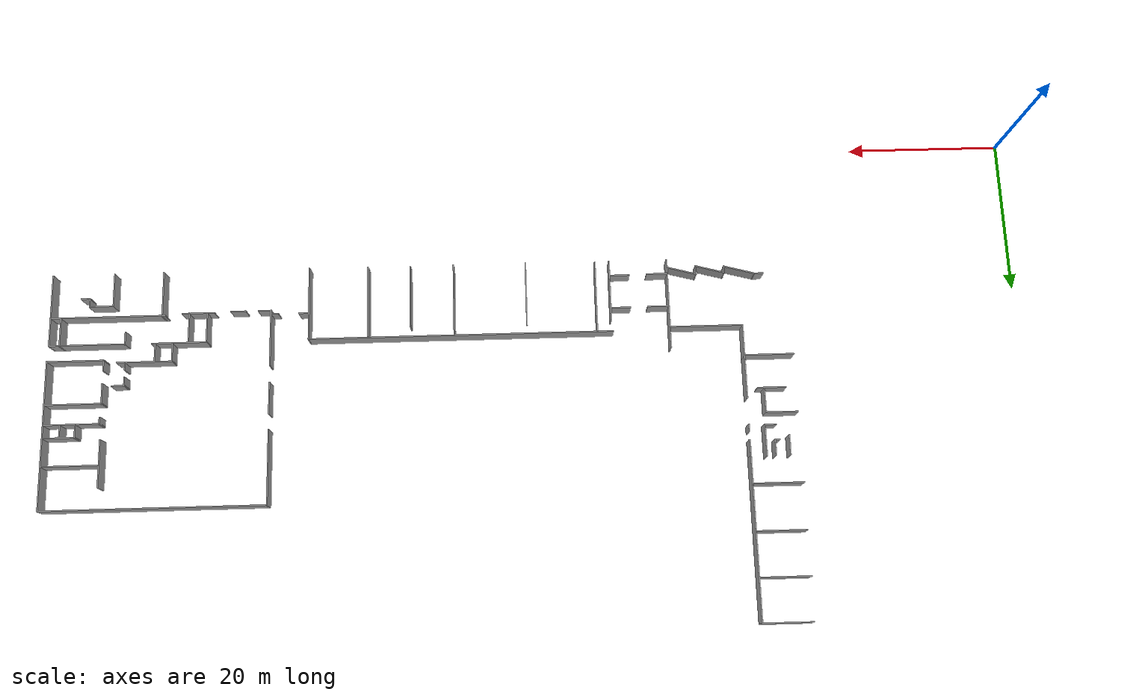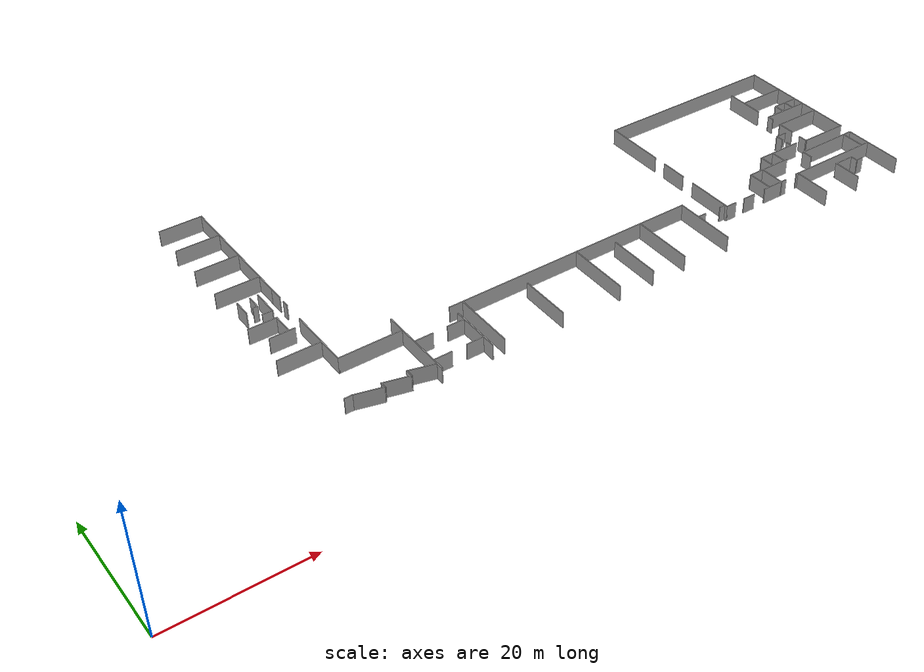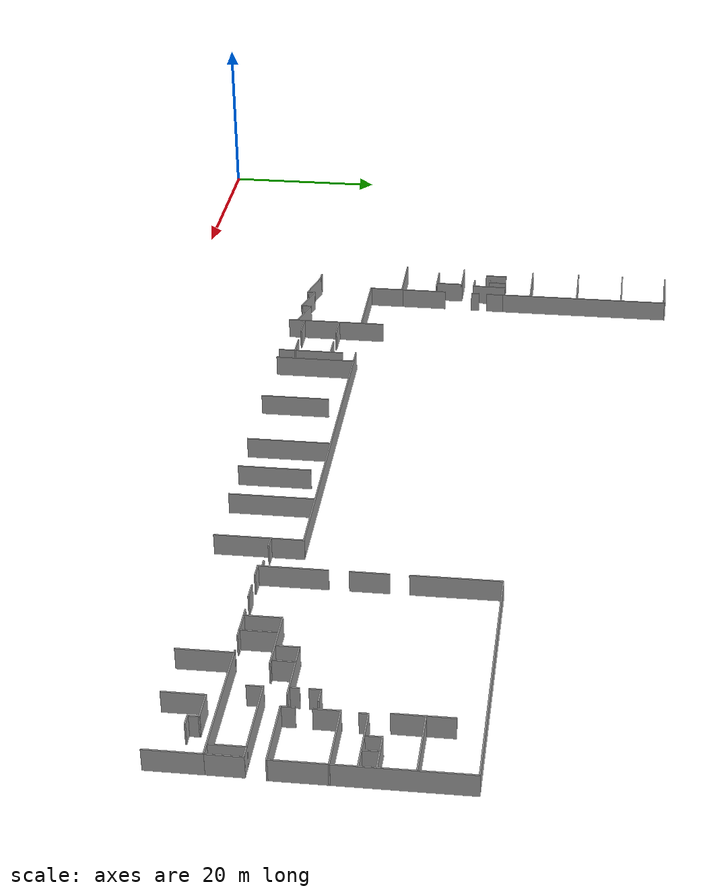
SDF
<sdf version="1.6">
 <model name="ensta_portes">
  <pose>1.28297 8.11006 0 0 -0 0</pose>
  <link name="Wall_1">
   <collision name="Wall_1_Collision">
    <geometry><box><size>7.5 0.15 2.5</size></box></geometry>
    <pose>0 0 1.25 0 -0 0</pose>
   </collision>
   <visual name="Wall_1_Visual">
    <pose>0 0 1.25 0 -0 0</pose>
    <geometry><box><size>7.5 0.15 2.5</size></box></geometry>
    <material>
     <script><uri>file://media/materials/scripts/gazebo.material</uri><name>Gazebo/Grey</name></script>
     <ambient>1 1 1 1</ambient>
    </material>
    <meta><layer>0</layer></meta>
   </visual>
   <pose>96.6871 16.6258 0 0 -0 -1.5708</pose>
  </link>
  <link name="Wall_10">
   <collision name="Wall_10_Collision">
    <geometry><box><size>19.5 0.15 2.5</size></box></geometry>
    <pose>0 0 1.25 0 -0 0</pose>
   </collision>
   <visual name="Wall_10_Visual">
    <pose>0 0 1.25 0 -0 0</pose>
    <geometry><box><size>19.5 0.15 2.5</size></box></geometry>
    <material>
     <script><uri>file://media/materials/scripts/gazebo.material</uri><name>Gazebo/Grey</name></script>
     <ambient>1 1 1 1</ambient>
    </material>
    <meta><layer>0</layer></meta>
   </visual>
   <pose>125.525 28.7456 0 0 -0 -1.5708</pose>
  </link>
  <link name="Wall_1140">
   <collision name="Wall_1140_Collision">
    <geometry><box><size>3.25 0.15 2.5</size></box></geometry>
    <pose>0 0 1.25 0 -0 0</pose>
   </collision>
   <visual name="Wall_1140_Visual">
    <pose>0 0 1.25 0 -0 0</pose>
    <geometry><box><size>3.25 0.15 2.5</size></box></geometry>
    <material>
     <script><uri>file://media/materials/scripts/gazebo.material</uri><name>Gazebo/Grey</name></script>
     <ambient>1 1 1 1</ambient>
    </material>
    <meta><layer>0</layer></meta>
   </visual>
   <pose>118.841 11.8048 0 0 -0 0</pose>
  </link>
  <link name="Wall_1141">
   <collision name="Wall_1141_Collision">
    <geometry><box><size>1.25 0.15 2.5</size></box></geometry>
    <pose>0 0 1.25 0 -0 0</pose>
   </collision>
   <visual name="Wall_1141_Visual">
    <pose>0 0 1.25 0 -0 0</pose>
    <geometry><box><size>1.25 0.15 2.5</size></box></geometry>
    <material>
     <script><uri>file://media/materials/scripts/gazebo.material</uri><name>Gazebo/Grey</name></script>
     <ambient>1 1 1 1</ambient>
    </material>
    <meta><layer>0</layer></meta>
   </visual>
   <pose>120.391 11.2548 0 0 -0 -1.5708</pose>
  </link>
  <link name="Wall_1142">
   <collision name="Wall_1142_Collision">
    <geometry><box><size>1.25 0.15 2.5</size></box></geometry>
    <pose>0 0 1.25 0 -0 0</pose>
   </collision>
   <visual name="Wall_1142_Visual">
    <pose>0 0 1.25 0 -0 0</pose>
    <geometry><box><size>1.25 0.15 2.5</size></box></geometry>
    <material>
     <script><uri>file://media/materials/scripts/gazebo.material</uri><name>Gazebo/Grey</name></script>
     <ambient>1 1 1 1</ambient>
    </material>
    <meta><layer>0</layer></meta>
   </visual>
   <pose>120.941 10.7048 0 0 -0 0</pose>
  </link>
  <link name="Wall_12">
   <collision name="Wall_12_Collision">
    <geometry><box><size>7.5 0.15 2.5</size></box></geometry>
    <pose>0 0 1.25 0 -0 0</pose>
   </collision>
   <visual name="Wall_12_Visual">
    <pose>0 0 1.25 0 -0 0</pose>
    <geometry><box><size>7.5 0.15 2.5</size></box></geometry>
    <material>
     <script><uri>file://media/materials/scripts/gazebo.material</uri><name>Gazebo/Grey</name></script>
     <ambient>1 1 1 1</ambient>
    </material>
    <meta><layer>0</layer></meta>
   </visual>
   <pose>121.85 19.0706 0 0 -0 3.14159</pose>
  </link>
  <link name="Wall_127">
   <collision name="Wall_127_Collision">
    <geometry><box><size>39.75 0.15 2.5</size></box></geometry>
    <pose>0 0 1.25 0 -0 0</pose>
   </collision>
   <visual name="Wall_127_Visual">
    <pose>0 0 1.25 0 -0 0</pose>
    <geometry><box><size>39.75 0.15 2.5</size></box></geometry>
    <material>
     <script><uri>file://media/materials/scripts/gazebo.material</uri><name>Gazebo/Grey</name></script>
     <ambient>1 1 1 1</ambient>
    </material>
    <meta><layer>0</layer></meta>
   </visual>
   <pose>71.9406 16.9534 0 0 -0 0</pose>
  </link>
  <link name="Wall_128">
   <collision name="Wall_128_Collision">
    <geometry><box><size>9.75 0.15 2.5</size></box></geometry>
    <pose>0 0 1.25 0 -0 0</pose>
   </collision>
   <visual name="Wall_128_Visual">
    <pose>0 0 1.25 0 -0 0</pose>
    <geometry><box><size>9.75 0.15 2.5</size></box></geometry>
    <material>
     <script><uri>file://media/materials/scripts/gazebo.material</uri><name>Gazebo/Grey</name></script>
     <ambient>1 1 1 1</ambient>
    </material>
    <meta><layer>0</layer></meta>
   </visual>
   <pose>91.7407 12.1534 0 0 -0 -1.5708</pose>
  </link>
  <link name="Wall_132">
   <collision name="Wall_132_Collision">
    <geometry><box><size>9.5 0.15 2.5</size></box></geometry>
    <pose>0 0 1.25 0 -0 0</pose>
   </collision>
   <visual name="Wall_132_Visual">
    <pose>0 0 1.25 0 -0 0</pose>
    <geometry><box><size>9.5 0.15 2.5</size></box></geometry>
    <material>
     <script><uri>file://media/materials/scripts/gazebo.material</uri><name>Gazebo/Grey</name></script>
     <ambient>1 1 1 1</ambient>
    </material>
    <meta><layer>0</layer></meta>
   </visual>
   <pose>84.0303 12.1121 0 0 -0 1.5708</pose>
  </link>
  <link name="Wall_136">
   <collision name="Wall_136_Collision">
    <geometry><box><size>8.25 0.15 2.5</size></box></geometry>
    <pose>0 0 1.25 0 -0 0</pose>
   </collision>
   <visual name="Wall_136_Visual">
    <pose>0 0 1.25 0 -0 0</pose>
    <geometry><box><size>8.25 0.15 2.5</size></box></geometry>
    <material>
     <script><uri>file://media/materials/scripts/gazebo.material</uri><name>Gazebo/Grey</name></script>
     <ambient>1 1 1 1</ambient>
    </material>
    <meta><layer>0</layer></meta>
   </visual>
   <pose>78.4946 11.4792 0 0 -0 -1.5708</pose>
  </link>
  <link name="Wall_139">
   <collision name="Wall_139_Collision">
    <geometry><box><size>9.67711 0.15 2.5</size></box></geometry>
    <pose>0 0 1.25 0 -0 0</pose>
   </collision>
   <visual name="Wall_139_Visual">
    <pose>0 0 1.25 0 -0 0</pose>
    <geometry><box><size>9.67711 0.15 2.5</size></box></geometry>
    <material>
     <script><uri>file://media/materials/scripts/gazebo.material</uri><name>Gazebo/Grey</name></script>
     <ambient>1 1 1 1</ambient>
    </material>
    <meta><layer>0</layer></meta>
   </visual>
   <pose>72.8074 12.1611 0 0 -0 -1.57132</pose>
  </link>
  <link name="Wall_14">
   <collision name="Wall_14_Collision">
    <geometry><box><size>1.5 0.15 2.5</size></box></geometry>
    <pose>0 0 1.25 0 -0 0</pose>
   </collision>
   <visual name="Wall_14_Visual">
    <pose>0 0 1.25 0 -0 0</pose>
    <geometry><box><size>1.5 0.15 2.5</size></box></geometry>
    <material>
     <script><uri>file://media/materials/scripts/gazebo.material</uri><name>Gazebo/Grey</name></script>
     <ambient>1 1 1 1</ambient>
    </material>
    <meta><layer>0</layer></meta>
   </visual>
   <pose>118.175 19.7456 0 0 -0 1.5708</pose>
  </link>
  <link name="Wall_143">
   <collision name="Wall_143_Collision">
    <geometry><box><size>8 0.15 2.5</size></box></geometry>
    <pose>0 0 1.25 0 -0 0</pose>
   </collision>
   <visual name="Wall_143_Visual">
    <pose>0 0 1.25 0 -0 0</pose>
    <geometry><box><size>8 0.15 2.5</size></box></geometry>
    <material>
     <script><uri>file://media/materials/scripts/gazebo.material</uri><name>Gazebo/Grey</name></script>
     <ambient>1 1 1 1</ambient>
    </material>
    <meta><layer>0</layer></meta>
   </visual>
   <pose>63.3219 11.2677 0 0 -0 -1.5708</pose>
  </link>
  <link name="Wall_146">
   <collision name="Wall_146_Collision">
    <geometry><box><size>8 0.15 2.5</size></box></geometry>
    <pose>0 0 1.25 0 -0 0</pose>
   </collision>
   <visual name="Wall_146_Visual">
    <pose>0 0 1.25 0 -0 0</pose>
    <geometry><box><size>8 0.15 2.5</size></box></geometry>
    <material>
     <script><uri>file://media/materials/scripts/gazebo.material</uri><name>Gazebo/Grey</name></script>
     <ambient>1 1 1 1</ambient>
    </material>
    <meta><layer>0</layer></meta>
   </visual>
   <pose>52.3106 11.3768 0 0 -0 1.5708</pose>
  </link>
  <link name="Wall_148">
   <collision name="Wall_148_Collision">
    <geometry><box><size>9.56645 0.15 2.5</size></box></geometry>
    <pose>0 0 1.25 0 -0 0</pose>
   </collision>
   <visual name="Wall_148_Visual">
    <pose>0 0 1.25 0 -0 0</pose>
    <geometry><box><size>9.56645 0.15 2.5</size></box></geometry>
    <material>
     <script><uri>file://media/materials/scripts/gazebo.material</uri><name>Gazebo/Grey</name></script>
     <ambient>1 1 1 1</ambient>
    </material>
    <meta><layer>0</layer></meta>
   </visual>
   <pose>54.1743 12.2289 0 0 -0 -1.57137</pose>
  </link>
  <link name="Wall_150">
   <collision name="Wall_150_Collision">
    <geometry><box><size>1.25 0.15 2.5</size></box></geometry>
    <pose>0 0 1.25 0 -0 0</pose>
   </collision>
   <visual name="Wall_150_Visual">
    <pose>0 0 1.25 0 -0 0</pose>
    <geometry><box><size>1.25 0.15 2.5</size></box></geometry>
    <material>
     <script><uri>file://media/materials/scripts/gazebo.material</uri><name>Gazebo/Grey</name></script>
     <ambient>1 1 1 1</ambient>
    </material>
    <meta><layer>0</layer></meta>
   </visual>
   <pose>92.4412 13.4281 0 0 -0 0</pose>
  </link>
  <link name="Wall_152">
   <collision name="Wall_152_Collision">
    <geometry><box><size>1 0.15 2.5</size></box></geometry>
    <pose>0 0 1.25 0 -0 0</pose>
   </collision>
   <visual name="Wall_152_Visual">
    <pose>0 0 1.25 0 -0 0</pose>
    <geometry><box><size>1 0.15 2.5</size></box></geometry>
    <material>
     <script><uri>file://media/materials/scripts/gazebo.material</uri><name>Gazebo/Grey</name></script>
     <ambient>1 1 1 1</ambient>
    </material>
    <meta><layer>0</layer></meta>
   </visual>
   <pose>96.1862 13.4081 0 0 -0 0</pose>
  </link>
  <link name="Wall_154">
   <collision name="Wall_154_Collision">
    <geometry><box><size>12 0.15 2.5</size></box></geometry>
    <pose>0 0 1.25 0 -0 0</pose>
   </collision>
   <visual name="Wall_154_Visual">
    <pose>0 0 1.25 0 -0 0</pose>
    <geometry><box><size>12 0.15 2.5</size></box></geometry>
    <material>
     <script><uri>file://media/materials/scripts/gazebo.material</uri><name>Gazebo/Grey</name></script>
     <ambient>1 1 1 1</ambient>
    </material>
    <meta><layer>0</layer></meta>
   </visual>
   <pose>44.7094 13.3891 0 0 -0 -1.5708</pose>
  </link>
  <link name="Wall_156">
   <collision name="Wall_156_Collision">
    <geometry><box><size>2.75 0.15 2.5</size></box></geometry>
    <pose>0 0 1.25 0 -0 0</pose>
   </collision>
   <visual name="Wall_156_Visual">
    <pose>0 0 1.25 0 -0 0</pose>
    <geometry><box><size>2.75 0.15 2.5</size></box></geometry>
    <material>
     <script><uri>file://media/materials/scripts/gazebo.material</uri><name>Gazebo/Grey</name></script>
     <ambient>1 1 1 1</ambient>
    </material>
    <meta><layer>0</layer></meta>
   </visual>
   <pose>46.1318 13.7812 0 0 -0 0</pose>
  </link>
  <link name="Wall_158">
   <collision name="Wall_158_Collision">
    <geometry><box><size>2.68029 0.15 2.5</size></box></geometry>
    <pose>0 0 1.25 0 -0 0</pose>
   </collision>
   <visual name="Wall_158_Visual">
    <pose>0 0 1.25 0 -0 0</pose>
    <geometry><box><size>2.68029 0.15 2.5</size></box></geometry>
    <material>
     <script><uri>file://media/materials/scripts/gazebo.material</uri><name>Gazebo/Grey</name></script>
     <ambient>1 1 1 1</ambient>
    </material>
    <meta><layer>0</layer></meta>
   </visual>
   <pose>51.0285 13.8198 0 0 -0 -0.000845</pose>
  </link>
  <link name="Wall_16">
   <collision name="Wall_16_Collision">
    <geometry><box><size>2.75 0.15 2.5</size></box></geometry>
    <pose>0 0 1.25 0 -0 0</pose>
   </collision>
   <visual name="Wall_16_Visual">
    <pose>0 0 1.25 0 -0 0</pose>
    <geometry><box><size>2.75 0.15 2.5</size></box></geometry>
    <material>
     <script><uri>file://media/materials/scripts/gazebo.material</uri><name>Gazebo/Grey</name></script>
     <ambient>1 1 1 1</ambient>
    </material>
    <meta><layer>0</layer></meta>
   </visual>
   <pose>118.2 23.4865 0 0 -0 1.5708</pose>
  </link>
  <link name="Wall_160">
   <collision name="Wall_160_Collision">
    <geometry><box><size>2.75 0.15 2.5</size></box></geometry>
    <pose>0 0 1.25 0 -0 0</pose>
   </collision>
   <visual name="Wall_160_Visual">
    <pose>0 0 1.25 0 -0 0</pose>
    <geometry><box><size>2.75 0.15 2.5</size></box></geometry>
    <material>
     <script><uri>file://media/materials/scripts/gazebo.material</uri><name>Gazebo/Grey</name></script>
     <ambient>1 1 1 1</ambient>
    </material>
    <meta><layer>0</layer></meta>
   </visual>
   <pose>46.0806 9.34396 0 0 -0 0</pose>
  </link>
  <link name="Wall_162">
   <collision name="Wall_162_Collision">
    <geometry><box><size>2.71941 0.15 2.5</size></box></geometry>
    <pose>0 0 1.25 0 -0 0</pose>
   </collision>
   <visual name="Wall_162_Visual">
    <pose>0 0 1.25 0 -0 0</pose>
    <geometry><box><size>2.71941 0.15 2.5</size></box></geometry>
    <material>
     <script><uri>file://media/materials/scripts/gazebo.material</uri><name>Gazebo/Grey</name></script>
     <ambient>1 1 1 1</ambient>
    </material>
    <meta><layer>0</layer></meta>
   </visual>
   <pose>51.0302 9.40501 0 0 -0 0.000813</pose>
  </link>
  <link name="Wall_164">
   <collision name="Wall_164_Collision">
    <geometry><box><size>4 0.15 2.5</size></box></geometry>
    <pose>0 0 1.25 0 -0 0</pose>
   </collision>
   <visual name="Wall_164_Visual">
    <pose>0 0 1.25 0 -0 0</pose>
    <geometry><box><size>4 0.15 2.5</size></box></geometry>
    <material>
     <script><uri>file://media/materials/scripts/gazebo.material</uri><name>Gazebo/Grey</name></script>
     <ambient>1 1 1 1</ambient>
    </material>
    <meta><layer>0</layer></meta>
   </visual>
   <pose>42.7805 9.01927 0 0 -0 2.87979</pose>
  </link>
  <link name="Wall_165">
   <collision name="Wall_165_Collision">
    <geometry><box><size>1.25 0.15 2.5</size></box></geometry>
    <pose>0 0 1.25 0 -0 0</pose>
   </collision>
   <visual name="Wall_165_Visual">
    <pose>0 0 1.25 0 -0 0</pose>
    <geometry><box><size>1.25 0.15 2.5</size></box></geometry>
    <material>
     <script><uri>file://media/materials/scripts/gazebo.material</uri><name>Gazebo/Grey</name></script>
     <ambient>1 1 1 1</ambient>
    </material>
    <meta><layer>0</layer></meta>
   </visual>
   <pose>40.9211 8.96749 0 0 -0 -1.5708</pose>
  </link>
  <link name="Wall_166">
   <collision name="Wall_166_Collision">
    <geometry><box><size>4 0.15 2.5</size></box></geometry>
    <pose>0 0 1.25 0 -0 0</pose>
   </collision>
   <visual name="Wall_166_Visual">
    <pose>0 0 1.25 0 -0 0</pose>
    <geometry><box><size>4 0.15 2.5</size></box></geometry>
    <material>
     <script><uri>file://media/materials/scripts/gazebo.material</uri><name>Gazebo/Grey</name></script>
     <ambient>1 1 1 1</ambient>
    </material>
    <meta><layer>0</layer></meta>
   </visual>
   <pose>39.0617 8.91572 0 0 -0 2.87979</pose>
  </link>
  <link name="Wall_167">
   <collision name="Wall_167_Collision">
    <geometry><box><size>1 0.15 2.5</size></box></geometry>
    <pose>0 0 1.25 0 -0 0</pose>
   </collision>
   <visual name="Wall_167_Visual">
    <pose>0 0 1.25 0 -0 0</pose>
    <geometry><box><size>1 0.15 2.5</size></box></geometry>
    <material>
     <script><uri>file://media/materials/scripts/gazebo.material</uri><name>Gazebo/Grey</name></script>
     <ambient>1 1 1 1</ambient>
    </material>
    <meta><layer>0</layer></meta>
   </visual>
   <pose>37.2023 8.98895 0 0 -0 -1.5708</pose>
  </link>
  <link name="Wall_168">
   <collision name="Wall_168_Collision">
    <geometry><box><size>4.25 0.15 2.5</size></box></geometry>
    <pose>0 0 1.25 0 -0 0</pose>
   </collision>
   <visual name="Wall_168_Visual">
    <pose>0 0 1.25 0 -0 0</pose>
    <geometry><box><size>4.25 0.15 2.5</size></box></geometry>
    <material>
     <script><uri>file://media/materials/scripts/gazebo.material</uri><name>Gazebo/Grey</name></script>
     <ambient>1 1 1 1</ambient>
    </material>
    <meta><layer>0</layer></meta>
   </visual>
   <pose>35.2222 9.09453 0 0 -0 2.87979</pose>
  </link>
  <link name="Wall_169">
   <collision name="Wall_169_Collision">
    <geometry><box><size>1.25 0.15 2.5</size></box></geometry>
    <pose>0 0 1.25 0 -0 0</pose>
   </collision>
   <visual name="Wall_169_Visual">
    <pose>0 0 1.25 0 -0 0</pose>
    <geometry><box><size>1.25 0.15 2.5</size></box></geometry>
    <material>
     <script><uri>file://media/materials/scripts/gazebo.material</uri><name>Gazebo/Grey</name></script>
     <ambient>1 1 1 1</ambient>
    </material>
    <meta><layer>0</layer></meta>
   </visual>
   <pose>32.692 9.62511 0 0 -0 3.14159</pose>
  </link>
  <link name="Wall_17">
   <collision name="Wall_17_Collision">
    <geometry><box><size>7.5 0.15 2.5</size></box></geometry>
    <pose>0 0 1.25 0 -0 0</pose>
   </collision>
   <visual name="Wall_17_Visual">
    <pose>0 0 1.25 0 -0 0</pose>
    <geometry><box><size>7.5 0.15 2.5</size></box></geometry>
    <material>
     <script><uri>file://media/materials/scripts/gazebo.material</uri><name>Gazebo/Grey</name></script>
     <ambient>1 1 1 1</ambient>
    </material>
    <meta><layer>0</layer></meta>
   </visual>
   <pose>121.875 24.7865 0 0 -0 0</pose>
  </link>
  <link name="Wall_20">
   <collision name="Wall_20_Collision">
    <geometry><box><size>1 0.15 2.5</size></box></geometry>
    <pose>0 0 1.25 0 -0 0</pose>
   </collision>
   <visual name="Wall_20_Visual">
    <pose>0 0 1.25 0 -0 0</pose>
    <geometry><box><size>1 0.15 2.5</size></box></geometry>
    <material>
     <script><uri>file://media/materials/scripts/gazebo.material</uri><name>Gazebo/Grey</name></script>
     <ambient>1 1 1 1</ambient>
    </material>
    <meta><layer>0</layer></meta>
   </visual>
   <pose>118.33 26.9935 0 0 -0 1.5708</pose>
  </link>
  <link name="Wall_21">
   <collision name="Wall_21_Collision">
    <geometry><box><size>7.25 0.15 2.5</size></box></geometry>
    <pose>0 0 1.25 0 -0 0</pose>
   </collision>
   <visual name="Wall_21_Visual">
    <pose>0 0 1.25 0 -0 0</pose>
    <geometry><box><size>7.25 0.15 2.5</size></box></geometry>
    <material>
     <script><uri>file://media/materials/scripts/gazebo.material</uri><name>Gazebo/Grey</name></script>
     <ambient>1 1 1 1</ambient>
    </material>
    <meta><layer>0</layer></meta>
   </visual>
   <pose>121.88 27.4185 0 0 -0 0</pose>
  </link>
  <link name="Wall_224">
   <collision name="Wall_224_Collision">
    <geometry><box><size>6.5 0.15 2.5</size></box></geometry>
    <pose>0 0 1.25 0 -0 0</pose>
   </collision>
   <visual name="Wall_224_Visual">
    <pose>0 0 1.25 0 -0 0</pose>
    <geometry><box><size>6.5 0.15 2.5</size></box></geometry>
    <material>
     <script><uri>file://media/materials/scripts/gazebo.material</uri><name>Gazebo/Grey</name></script>
     <ambient>1 1 1 1</ambient>
    </material>
    <meta><layer>0</layer></meta>
   </visual>
   <pose>32.0733 20.6529 0 0 -0 0</pose>
  </link>
  <link name="Wall_226">
   <collision name="Wall_226_Collision">
    <geometry><box><size>2.25 0.15 2.5</size></box></geometry>
    <pose>0 0 1.25 0 -0 0</pose>
   </collision>
   <visual name="Wall_226_Visual">
    <pose>0 0 1.25 0 -0 0</pose>
    <geometry><box><size>2.25 0.15 2.5</size></box></geometry>
    <material>
     <script><uri>file://media/materials/scripts/gazebo.material</uri><name>Gazebo/Grey</name></script>
     <ambient>1 1 1 1</ambient>
    </material>
    <meta><layer>0</layer></meta>
   </visual>
   <pose>35.3308 32.8482 0 0 -0 -1.5708</pose>
  </link>
  <link name="Wall_228">
   <collision name="Wall_228_Collision">
    <geometry><box><size>1 0.15 2.5</size></box></geometry>
    <pose>0 0 1.25 0 -0 0</pose>
   </collision>
   <visual name="Wall_228_Visual">
    <pose>0 0 1.25 0 -0 0</pose>
    <geometry><box><size>1 0.15 2.5</size></box></geometry>
    <material>
     <script><uri>file://media/materials/scripts/gazebo.material</uri><name>Gazebo/Grey</name></script>
     <ambient>1 1 1 1</ambient>
    </material>
    <meta><layer>0</layer></meta>
   </visual>
   <pose>35.3131 30.248 0 0 -0 -1.5708</pose>
  </link>
  <link name="Wall_23">
   <collision name="Wall_23_Collision">
    <geometry><box><size>1.75 0.15 2.5</size></box></geometry>
    <pose>0 0 1.25 0 -0 0</pose>
   </collision>
   <visual name="Wall_23_Visual">
    <pose>0 0 1.25 0 -0 0</pose>
    <geometry><box><size>1.75 0.15 2.5</size></box></geometry>
    <material>
     <script><uri>file://media/materials/scripts/gazebo.material</uri><name>Gazebo/Grey</name></script>
     <ambient>1 1 1 1</ambient>
    </material>
    <meta><layer>0</layer></meta>
   </visual>
   <pose>121.394 28.3291 0 0 -0 -1.5708</pose>
  </link>
  <link name="Wall_230">
   <collision name="Wall_230_Collision">
    <geometry><box><size>5.75 0.15 2.5</size></box></geometry>
    <pose>0 0 1.25 0 -0 0</pose>
   </collision>
   <visual name="Wall_230_Visual">
    <pose>0 0 1.25 0 -0 0</pose>
    <geometry><box><size>5.75 0.15 2.5</size></box></geometry>
    <material>
     <script><uri>file://media/materials/scripts/gazebo.material</uri><name>Gazebo/Grey</name></script>
     <ambient>1 1 1 1</ambient>
    </material>
    <meta><layer>0</layer></meta>
   </visual>
   <pose>35.2763 23.501 0 0 -0 -1.5708</pose>
  </link>
  <link name="Wall_234">
   <collision name="Wall_234_Collision">
    <geometry><box><size>4.25 0.15 2.5</size></box></geometry>
    <pose>0 0 1.25 0 -0 0</pose>
   </collision>
   <visual name="Wall_234_Visual">
    <pose>0 0 1.25 0 -0 0</pose>
    <geometry><box><size>4.25 0.15 2.5</size></box></geometry>
    <material>
     <script><uri>file://media/materials/scripts/gazebo.material</uri><name>Gazebo/Grey</name></script>
     <ambient>1 1 1 1</ambient>
    </material>
    <meta><layer>0</layer></meta>
   </visual>
   <pose>30.9589 28.2724 0 0 -0 0</pose>
  </link>
  <link name="Wall_236">
   <collision name="Wall_236_Collision">
    <geometry><box><size>3.25 0.15 2.5</size></box></geometry>
    <pose>0 0 1.25 0 -0 0</pose>
   </collision>
   <visual name="Wall_236_Visual">
    <pose>0 0 1.25 0 -0 0</pose>
    <geometry><box><size>3.25 0.15 2.5</size></box></geometry>
    <material>
     <script><uri>file://media/materials/scripts/gazebo.material</uri><name>Gazebo/Grey</name></script>
     <ambient>1 1 1 1</ambient>
    </material>
    <meta><layer>0</layer></meta>
   </visual>
   <pose>33.0089 26.7224 0 0 -0 -1.5708</pose>
  </link>
  <link name="Wall_242">
   <collision name="Wall_242_Collision">
    <geometry><box><size>3.75 0.15 2.5</size></box></geometry>
    <pose>0 0 1.25 0 -0 0</pose>
   </collision>
   <visual name="Wall_242_Visual">
    <pose>0 0 1.25 0 -0 0</pose>
    <geometry><box><size>3.75 0.15 2.5</size></box></geometry>
    <material>
     <script><uri>file://media/materials/scripts/gazebo.material</uri><name>Gazebo/Grey</name></script>
     <ambient>1 1 1 1</ambient>
    </material>
    <meta><layer>0</layer></meta>
   </visual>
   <pose>32.0287 25.0255 0 0 -0 0</pose>
  </link>
  <link name="Wall_25">
   <collision name="Wall_25_Collision">
    <geometry><box><size>4.25 0.15 2.5</size></box></geometry>
    <pose>0 0 1.25 0 -0 0</pose>
   </collision>
   <visual name="Wall_25_Visual">
    <pose>0 0 1.25 0 -0 0</pose>
    <geometry><box><size>4.25 0.15 2.5</size></box></geometry>
    <material>
     <script><uri>file://media/materials/scripts/gazebo.material</uri><name>Gazebo/Grey</name></script>
     <ambient>1 1 1 1</ambient>
    </material>
    <meta><layer>0</layer></meta>
   </visual>
   <pose>123.444 29.1291 0 0 -0 0</pose>
  </link>
  <link name="Wall_250">
   <collision name="Wall_250_Collision">
    <geometry><box><size>2.67056 0.15 2.5</size></box></geometry>
    <pose>0 0 1.25 0 -0 0</pose>
   </collision>
   <visual name="Wall_250_Visual">
    <pose>0 0 1.25 0 -0 0</pose>
    <geometry><box><size>2.67056 0.15 2.5</size></box></geometry>
    <material>
     <script><uri>file://media/materials/scripts/gazebo.material</uri><name>Gazebo/Grey</name></script>
     <ambient>1 1 1 1</ambient>
    </material>
    <meta><layer>0</layer></meta>
   </visual>
   <pose>30.2639 32.6002 0 0 -0 1.56507</pose>
  </link>
  <link name="Wall_252">
   <collision name="Wall_252_Collision">
    <geometry><box><size>4.19432 0.15 2.5</size></box></geometry>
    <pose>0 0 1.25 0 -0 0</pose>
   </collision>
   <visual name="Wall_252_Visual">
    <pose>0 0 1.25 0 -0 0</pose>
    <geometry><box><size>4.19432 0.15 2.5</size></box></geometry>
    <material>
     <script><uri>file://media/materials/scripts/gazebo.material</uri><name>Gazebo/Grey</name></script>
     <ambient>1 1 1 1</ambient>
    </material>
    <meta><layer>0</layer></meta>
   </visual>
   <pose>33.2741 31.8839 0 0 -0 -1.57169</pose>
  </link>
  <link name="Wall_258">
   <collision name="Wall_258_Collision">
    <geometry><box><size>1.57981 0.15 2.5</size></box></geometry>
    <pose>0 0 1.25 0 -0 0</pose>
   </collision>
   <visual name="Wall_258_Visual">
    <pose>0 0 1.25 0 -0 0</pose>
    <geometry><box><size>1.57981 0.15 2.5</size></box></geometry>
    <material>
     <script><uri>file://media/materials/scripts/gazebo.material</uri><name>Gazebo/Grey</name></script>
     <ambient>1 1 1 1</ambient>
    </material>
    <meta><layer>0</layer></meta>
   </visual>
   <pose>32.5475 29.8852 0 0 -0 -0.018868</pose>
  </link>
  <link name="Wall_260">
   <collision name="Wall_260_Collision">
    <geometry><box><size>2.14235 0.15 2.5</size></box></geometry>
    <pose>0 0 1.25 0 -0 0</pose>
   </collision>
   <visual name="Wall_260_Visual">
    <pose>0 0 1.25 0 -0 0</pose>
    <geometry><box><size>2.14235 0.15 2.5</size></box></geometry>
    <material>
     <script><uri>file://media/materials/scripts/gazebo.material</uri><name>Gazebo/Grey</name></script>
     <ambient>1 1 1 1</ambient>
    </material>
    <meta><layer>0</layer></meta>
   </visual>
   <pose>32.1089 32.8493 0 0 -0 -1.57227</pose>
  </link>
  <link name="Wall_261">
   <collision name="Wall_261_Collision">
    <geometry><box><size>0.75 0.15 2.5</size></box></geometry>
    <pose>0 0 1.25 0 -0 0</pose>
   </collision>
   <visual name="Wall_261_Visual">
    <pose>0 0 1.25 0 -0 0</pose>
    <geometry><box><size>0.75 0.15 2.5</size></box></geometry>
    <material>
     <script><uri>file://media/materials/scripts/gazebo.material</uri><name>Gazebo/Grey</name></script>
     <ambient>1 1 1 1</ambient>
    </material>
    <meta><layer>0</layer></meta>
   </visual>
   <pose>31.8074 31.8531 0 0 -0 3.14159</pose>
  </link>
  <link name="Wall_264">
   <collision name="Wall_264_Collision">
    <geometry><box><size>21 0.15 2.5</size></box></geometry>
    <pose>0 0 1.25 0 -0 0</pose>
   </collision>
   <visual name="Wall_264_Visual">
    <pose>0 0 1.25 0 -0 0</pose>
    <geometry><box><size>21 0.15 2.5</size></box></geometry>
    <material>
     <script><uri>file://media/materials/scripts/gazebo.material</uri><name>Gazebo/Grey</name></script>
     <ambient>1 1 1 1</ambient>
    </material>
    <meta><layer>0</layer></meta>
   </visual>
   <pose>35.3308 44.3232 0 0 -0 1.5708</pose>
  </link>
  <link name="Wall_265">
   <collision name="Wall_265_Collision">
    <geometry><box><size>6.5 0.15 2.5</size></box></geometry>
    <pose>0 0 1.25 0 -0 0</pose>
   </collision>
   <visual name="Wall_265_Visual">
    <pose>0 0 1.25 0 -0 0</pose>
    <geometry><box><size>6.5 0.15 2.5</size></box></geometry>
    <material>
     <script><uri>file://media/materials/scripts/gazebo.material</uri><name>Gazebo/Grey</name></script>
     <ambient>1 1 1 1</ambient>
    </material>
    <meta><layer>0</layer></meta>
   </visual>
   <pose>32.1558 54.7482 0 0 -0 3.14159</pose>
  </link>
  <link name="Wall_268">
   <collision name="Wall_268_Collision">
    <geometry><box><size>6.5 0.15 2.5</size></box></geometry>
    <pose>0 0 1.25 0 -0 0</pose>
   </collision>
   <visual name="Wall_268_Visual">
    <pose>0 0 1.25 0 -0 0</pose>
    <geometry><box><size>6.5 0.15 2.5</size></box></geometry>
    <material>
     <script><uri>file://media/materials/scripts/gazebo.material</uri><name>Gazebo/Grey</name></script>
     <ambient>1 1 1 1</ambient>
    </material>
    <meta><layer>0</layer></meta>
   </visual>
   <pose>32.0067 49.1599 0 0 -0 0</pose>
  </link>
  <link name="Wall_27">
   <collision name="Wall_27_Collision">
    <geometry><box><size>1.75 0.15 2.5</size></box></geometry>
    <pose>0 0 1.25 0 -0 0</pose>
   </collision>
   <visual name="Wall_27_Visual">
    <pose>0 0 1.25 0 -0 0</pose>
    <geometry><box><size>1.75 0.15 2.5</size></box></geometry>
    <material>
     <script><uri>file://media/materials/scripts/gazebo.material</uri><name>Gazebo/Grey</name></script>
     <ambient>1 1 1 1</ambient>
    </material>
    <meta><layer>0</layer></meta>
   </visual>
   <pose>123.352 28.2499 0 0 -0 -1.5708</pose>
  </link>
  <link name="Wall_272">
   <collision name="Wall_272_Collision">
    <geometry><box><size>6.5 0.15 2.5</size></box></geometry>
    <pose>0 0 1.25 0 -0 0</pose>
   </collision>
   <visual name="Wall_272_Visual">
    <pose>0 0 1.25 0 -0 0</pose>
    <geometry><box><size>6.5 0.15 2.5</size></box></geometry>
    <material>
     <script><uri>file://media/materials/scripts/gazebo.material</uri><name>Gazebo/Grey</name></script>
     <ambient>1 1 1 1</ambient>
    </material>
    <meta><layer>0</layer></meta>
   </visual>
   <pose>32.0378 43.4045 0 0 -0 0</pose>
  </link>
  <link name="Wall_275">
   <collision name="Wall_275_Collision">
    <geometry><box><size>6.65634 0.15 2.5</size></box></geometry>
    <pose>0 0 1.25 0 -0 0</pose>
   </collision>
   <visual name="Wall_275_Visual">
    <pose>0 0 1.25 0 -0 0</pose>
    <geometry><box><size>6.65634 0.15 2.5</size></box></geometry>
    <material>
     <script><uri>file://media/materials/scripts/gazebo.material</uri><name>Gazebo/Grey</name></script>
     <ambient>1 1 1 1</ambient>
    </material>
    <meta><layer>0</layer></meta>
   </visual>
   <pose>32.0675 37.397 0 0 -0 -0.000928</pose>
  </link>
  <link name="Wall_29">
   <collision name="Wall_29_Collision">
    <geometry><box><size>6.25 0.15 2.5</size></box></geometry>
    <pose>0 0 1.25 0 -0 0</pose>
   </collision>
   <visual name="Wall_29_Visual">
    <pose>0 0 1.25 0 -0 0</pose>
    <geometry><box><size>6.25 0.15 2.5</size></box></geometry>
    <material>
     <script><uri>file://media/materials/scripts/gazebo.material</uri><name>Gazebo/Grey</name></script>
     <ambient>1 1 1 1</ambient>
    </material>
    <meta><layer>0</layer></meta>
   </visual>
   <pose>118.101 32.5663 0 0 -0 1.5708</pose>
  </link>
  <link name="Wall_3">
   <collision name="Wall_3_Collision">
    <geometry><box><size>4.25 0.15 2.5</size></box></geometry>
    <pose>0 0 1.25 0 -0 0</pose>
   </collision>
   <visual name="Wall_3_Visual">
    <pose>0 0 1.25 0 -0 0</pose>
    <geometry><box><size>4.25 0.15 2.5</size></box></geometry>
    <material>
     <script><uri>file://media/materials/scripts/gazebo.material</uri><name>Gazebo/Grey</name></script>
     <ambient>1 1 1 1</ambient>
    </material>
    <meta><layer>0</layer></meta>
   </visual>
   <pose>96.6894 24.6185 0 0 -0 1.5708</pose>
  </link>
  <link name="Wall_303">
   <collision name="Wall_303_Collision">
    <geometry><box><size>4.25 0.15 2.5</size></box></geometry>
    <pose>0 0 1.25 0 -0 0</pose>
   </collision>
   <visual name="Wall_303_Visual">
    <pose>0 0 1.25 0 -0 0</pose>
    <geometry><box><size>4.25 0.15 2.5</size></box></geometry>
    <material>
     <script><uri>file://media/materials/scripts/gazebo.material</uri><name>Gazebo/Grey</name></script>
     <ambient>1 1 1 1</ambient>
    </material>
    <meta><layer>0</layer></meta>
   </visual>
   <pose>35.2763 18.651 0 0 -0 -1.5708</pose>
  </link>
  <link name="Wall_304">
   <collision name="Wall_304_Collision">
    <geometry><box><size>9.5 0.15 2.5</size></box></geometry>
    <pose>0 0 1.25 0 -0 0</pose>
   </collision>
   <visual name="Wall_304_Visual">
    <pose>0 0 1.25 0 -0 0</pose>
    <geometry><box><size>9.5 0.15 2.5</size></box></geometry>
    <material>
     <script><uri>file://media/materials/scripts/gazebo.material</uri><name>Gazebo/Grey</name></script>
     <ambient>1 1 1 1</ambient>
    </material>
    <meta><layer>0</layer></meta>
   </visual>
   <pose>39.9513 16.601 0 0 -0 0</pose>
  </link>
  <link name="Wall_31">
   <collision name="Wall_31_Collision">
    <geometry><box><size>7.41936 0.15 2.5</size></box></geometry>
    <pose>0 0 1.25 0 -0 0</pose>
   </collision>
   <visual name="Wall_31_Visual">
    <pose>0 0 1.25 0 -0 0</pose>
    <geometry><box><size>7.41936 0.15 2.5</size></box></geometry>
    <material>
     <script><uri>file://media/materials/scripts/gazebo.material</uri><name>Gazebo/Grey</name></script>
     <ambient>1 1 1 1</ambient>
    </material>
    <meta><layer>0</layer></meta>
   </visual>
   <pose>121.888 32.7866 0 0 -0 -0.000765</pose>
  </link>
  <link name="Wall_33">
   <collision name="Wall_33_Collision">
    <geometry><box><size>1.75 0.15 2.5</size></box></geometry>
    <pose>0 0 1.25 0 -0 0</pose>
   </collision>
   <visual name="Wall_33_Visual">
    <pose>0 0 1.25 0 -0 0</pose>
    <geometry><box><size>1.75 0.15 2.5</size></box></geometry>
    <material>
     <script><uri>file://media/materials/scripts/gazebo.material</uri><name>Gazebo/Grey</name></script>
     <ambient>1 1 1 1</ambient>
    </material>
    <meta><layer>0</layer></meta>
   </visual>
   <pose>116.205 22.4952 0 0 -0 0</pose>
  </link>
  <link name="Wall_35">
   <collision name="Wall_35_Collision">
    <geometry><box><size>1.25 0.15 2.5</size></box></geometry>
    <pose>0 0 1.25 0 -0 0</pose>
   </collision>
   <visual name="Wall_35_Visual">
    <pose>0 0 1.25 0 -0 0</pose>
    <geometry><box><size>1.25 0.15 2.5</size></box></geometry>
    <material>
     <script><uri>file://media/materials/scripts/gazebo.material</uri><name>Gazebo/Grey</name></script>
     <ambient>1 1 1 1</ambient>
    </material>
    <meta><layer>0</layer></meta>
   </visual>
   <pose>115.405 21.9452 0 0 -0 -1.5708</pose>
  </link>
  <link name="Wall_37">
   <collision name="Wall_37_Collision">
    <geometry><box><size>1 0.15 2.5</size></box></geometry>
    <pose>0 0 1.25 0 -0 0</pose>
   </collision>
   <visual name="Wall_37_Visual">
    <pose>0 0 1.25 0 -0 0</pose>
    <geometry><box><size>1 0.15 2.5</size></box></geometry>
    <material>
     <script><uri>file://media/materials/scripts/gazebo.material</uri><name>Gazebo/Grey</name></script>
     <ambient>1 1 1 1</ambient>
    </material>
    <meta><layer>0</layer></meta>
   </visual>
   <pose>115.405 19.9653 0 0 -0 -1.5708</pose>
  </link>
  <link name="Wall_40">
   <collision name="Wall_40_Collision">
    <geometry><box><size>7.25 0.15 2.5</size></box></geometry>
    <pose>0 0 1.25 0 -0 0</pose>
   </collision>
   <visual name="Wall_40_Visual">
    <pose>0 0 1.25 0 -0 0</pose>
    <geometry><box><size>7.25 0.15 2.5</size></box></geometry>
    <material>
     <script><uri>file://media/materials/scripts/gazebo.material</uri><name>Gazebo/Grey</name></script>
     <ambient>1 1 1 1</ambient>
    </material>
    <meta><layer>0</layer></meta>
   </visual>
   <pose>112.918 19.4189 0 0 -0 0</pose>
  </link>
  <link name="Wall_42">
   <collision name="Wall_42_Collision">
    <geometry><box><size>2.5 0.15 2.5</size></box></geometry>
    <pose>0 0 1.25 0 -0 0</pose>
   </collision>
   <visual name="Wall_42_Visual">
    <pose>0 0 1.25 0 -0 0</pose>
    <geometry><box><size>2.5 0.15 2.5</size></box></geometry>
    <material>
     <script><uri>file://media/materials/scripts/gazebo.material</uri><name>Gazebo/Grey</name></script>
     <ambient>1 1 1 1</ambient>
    </material>
    <meta><layer>0</layer></meta>
   </visual>
   <pose>109.368 18.2439 0 0 -0 -1.5708</pose>
  </link>
  <link name="Wall_44">
   <collision name="Wall_44_Collision">
    <geometry><box><size>2.5 0.15 2.5</size></box></geometry>
    <pose>0 0 1.25 0 -0 0</pose>
   </collision>
   <visual name="Wall_44_Visual">
    <pose>0 0 1.25 0 -0 0</pose>
    <geometry><box><size>2.5 0.15 2.5</size></box></geometry>
    <material>
     <script><uri>file://media/materials/scripts/gazebo.material</uri><name>Gazebo/Grey</name></script>
     <ambient>1 1 1 1</ambient>
    </material>
    <meta><layer>0</layer></meta>
   </visual>
   <pose>111.612 18.2126 0 0 -0 -1.5708</pose>
  </link>
  <link name="Wall_46">
   <collision name="Wall_46_Collision">
    <geometry><box><size>7.25 0.15 2.5</size></box></geometry>
    <pose>0 0 1.25 0 -0 0</pose>
   </collision>
   <visual name="Wall_46_Visual">
    <pose>0 0 1.25 0 -0 0</pose>
    <geometry><box><size>7.25 0.15 2.5</size></box></geometry>
    <material>
     <script><uri>file://media/materials/scripts/gazebo.material</uri><name>Gazebo/Grey</name></script>
     <ambient>1 1 1 1</ambient>
    </material>
    <meta><layer>0</layer></meta>
   </visual>
   <pose>108.525 16.9842 0 0 -0 3.14159</pose>
  </link>
  <link name="Wall_48">
   <collision name="Wall_48_Collision">
    <geometry><box><size>4 0.15 2.5</size></box></geometry>
    <pose>0 0 1.25 0 -0 0</pose>
   </collision>
   <visual name="Wall_48_Visual">
    <pose>0 0 1.25 0 -0 0</pose>
    <geometry><box><size>4 0.15 2.5</size></box></geometry>
    <material>
     <script><uri>file://media/materials/scripts/gazebo.material</uri><name>Gazebo/Grey</name></script>
     <ambient>1 1 1 1</ambient>
    </material>
    <meta><layer>0</layer></meta>
   </visual>
   <pose>104.975 15.0592 0 0 -0 -1.5708</pose>
  </link>
  <link name="Wall_50">
   <collision name="Wall_50_Collision">
    <geometry><box><size>4 0.15 2.5</size></box></geometry>
    <pose>0 0 1.25 0 -0 0</pose>
   </collision>
   <visual name="Wall_50_Visual">
    <pose>0 0 1.25 0 -0 0</pose>
    <geometry><box><size>4 0.15 2.5</size></box></geometry>
    <material>
     <script><uri>file://media/materials/scripts/gazebo.material</uri><name>Gazebo/Grey</name></script>
     <ambient>1 1 1 1</ambient>
    </material>
    <meta><layer>0</layer></meta>
   </visual>
   <pose>107.314 14.9736 0 0 -0 -1.5708</pose>
  </link>
  <link name="Wall_52">
   <collision name="Wall_52_Collision">
    <geometry><box><size>4.25 0.15 2.5</size></box></geometry>
    <pose>0 0 1.25 0 -0 0</pose>
   </collision>
   <visual name="Wall_52_Visual">
    <pose>0 0 1.25 0 -0 0</pose>
    <geometry><box><size>4.25 0.15 2.5</size></box></geometry>
    <material>
     <script><uri>file://media/materials/scripts/gazebo.material</uri><name>Gazebo/Grey</name></script>
     <ambient>1 1 1 1</ambient>
    </material>
    <meta><layer>0</layer></meta>
   </visual>
   <pose>106.138 13.0637 0 0 -0 3.14159</pose>
  </link>
  <link name="Wall_54">
   <collision name="Wall_54_Collision">
    <geometry><box><size>2 0.15 2.5</size></box></geometry>
    <pose>0 0 1.25 0 -0 0</pose>
   </collision>
   <visual name="Wall_54_Visual">
    <pose>0 0 1.25 0 -0 0</pose>
    <geometry><box><size>2 0.15 2.5</size></box></geometry>
    <material>
     <script><uri>file://media/materials/scripts/gazebo.material</uri><name>Gazebo/Grey</name></script>
     <ambient>1 1 1 1</ambient>
    </material>
    <meta><layer>0</layer></meta>
   </visual>
   <pose>100.922 12.9566 0 0 -0 0</pose>
  </link>
  <link name="Wall_56">
   <collision name="Wall_56_Collision">
    <geometry><box><size>1.75 0.15 2.5</size></box></geometry>
    <pose>0 0 1.25 0 -0 0</pose>
   </collision>
   <visual name="Wall_56_Visual">
    <pose>0 0 1.25 0 -0 0</pose>
    <geometry><box><size>1.75 0.15 2.5</size></box></geometry>
    <material>
     <script><uri>file://media/materials/scripts/gazebo.material</uri><name>Gazebo/Grey</name></script>
     <ambient>1 1 1 1</ambient>
    </material>
    <meta><layer>0</layer></meta>
   </visual>
   <pose>97.4871 12.9508 0 0 -0 0</pose>
  </link>
  <link name="Wall_59">
   <collision name="Wall_59_Collision">
    <geometry><box><size>15 0.15 2.5</size></box></geometry>
    <pose>0 0 1.25 0 -0 0</pose>
   </collision>
   <visual name="Wall_59_Visual">
    <pose>0 0 1.25 0 -0 0</pose>
    <geometry><box><size>15 0.15 2.5</size></box></geometry>
    <material>
     <script><uri>file://media/materials/scripts/gazebo.material</uri><name>Gazebo/Grey</name></script>
     <ambient>1 1 1 1</ambient>
    </material>
    <meta><layer>0</layer></meta>
   </visual>
   <pose>117.945 13.2515 0 0 -0 0</pose>
  </link>
  <link name="Wall_6">
   <collision name="Wall_6_Collision">
    <geometry><box><size>9.75 0.15 2.5</size></box></geometry>
    <pose>0 0 1.25 0 -0 0</pose>
   </collision>
   <visual name="Wall_6_Visual">
    <pose>0 0 1.25 0 -0 0</pose>
    <geometry><box><size>9.75 0.15 2.5</size></box></geometry>
    <material>
     <script><uri>file://media/materials/scripts/gazebo.material</uri><name>Gazebo/Grey</name></script>
     <ambient>1 1 1 1</ambient>
    </material>
    <meta><layer>0</layer></meta>
   </visual>
   <pose>96.6749 33.6206 0 0 -0 1.5708</pose>
  </link>
  <link name="Wall_61">
   <collision name="Wall_61_Collision">
    <geometry><box><size>1.75 0.15 2.5</size></box></geometry>
    <pose>0 0 1.25 0 -0 0</pose>
   </collision>
   <visual name="Wall_61_Visual">
    <pose>0 0 1.25 0 -0 0</pose>
    <geometry><box><size>1.75 0.15 2.5</size></box></geometry>
    <material>
     <script><uri>file://media/materials/scripts/gazebo.material</uri><name>Gazebo/Grey</name></script>
     <ambient>1 1 1 1</ambient>
    </material>
    <meta><layer>0</layer></meta>
   </visual>
   <pose>115.537 16.1622 0 0 -0 1.5708</pose>
  </link>
  <link name="Wall_62">
   <collision name="Wall_62_Collision">
    <geometry><box><size>10 0.15 2.5</size></box></geometry>
    <pose>0 0 1.25 0 -0 0</pose>
   </collision>
   <visual name="Wall_62_Visual">
    <pose>0 0 1.25 0 -0 0</pose>
    <geometry><box><size>10 0.15 2.5</size></box></geometry>
    <material>
     <script><uri>file://media/materials/scripts/gazebo.material</uri><name>Gazebo/Grey</name></script>
     <ambient>1 1 1 1</ambient>
    </material>
    <meta><layer>0</layer></meta>
   </visual>
   <pose>120.462 16.9622 0 0 -0 0</pose>
  </link>
  <link name="Wall_64">
   <collision name="Wall_64_Collision">
    <geometry><box><size>3.86076 0.15 2.5</size></box></geometry>
    <pose>0 0 1.25 0 -0 0</pose>
   </collision>
   <visual name="Wall_64_Visual">
    <pose>0 0 1.25 0 -0 0</pose>
    <geometry><box><size>3.86076 0.15 2.5</size></box></geometry>
    <material>
     <script><uri>file://media/materials/scripts/gazebo.material</uri><name>Gazebo/Grey</name></script>
     <ambient>1 1 1 1</ambient>
    </material>
    <meta><layer>0</layer></meta>
   </visual>
   <pose>125.379 15.1069 0 0 -0 -1.57532</pose>
  </link>
  <link name="Wall_66">
   <collision name="Wall_66_Collision">
    <geometry><box><size>3.75 0.15 2.5</size></box></geometry>
    <pose>0 0 1.25 0 -0 0</pose>
   </collision>
   <visual name="Wall_66_Visual">
    <pose>0 0 1.25 0 -0 0</pose>
    <geometry><box><size>3.75 0.15 2.5</size></box></geometry>
    <material>
     <script><uri>file://media/materials/scripts/gazebo.material</uri><name>Gazebo/Grey</name></script>
     <ambient>1 1 1 1</ambient>
    </material>
    <meta><layer>0</layer></meta>
   </visual>
   <pose>124.027 15.1665 0 0 -0 -1.5708</pose>
  </link>
  <link name="Wall_68">
   <collision name="Wall_68_Collision">
    <geometry><box><size>6 0.15 2.5</size></box></geometry>
    <pose>0 0 1.25 0 -0 0</pose>
   </collision>
   <visual name="Wall_68_Visual">
    <pose>0 0 1.25 0 -0 0</pose>
    <geometry><box><size>6 0.15 2.5</size></box></geometry>
    <material>
     <script><uri>file://media/materials/scripts/gazebo.material</uri><name>Gazebo/Grey</name></script>
     <ambient>1 1 1 1</ambient>
    </material>
    <meta><layer>0</layer></meta>
   </visual>
   <pose>110.845 10.3311 0 0 -0 -1.5708</pose>
  </link>
  <link name="Wall_71">
   <collision name="Wall_71_Collision">
    <geometry><box><size>4.5 0.15 2.5</size></box></geometry>
    <pose>0 0 1.25 0 -0 0</pose>
   </collision>
   <visual name="Wall_71_Visual">
    <pose>0 0 1.25 0 -0 0</pose>
    <geometry><box><size>4.5 0.15 2.5</size></box></geometry>
    <material>
     <script><uri>file://media/materials/scripts/gazebo.material</uri><name>Gazebo/Grey</name></script>
     <ambient>1 1 1 1</ambient>
    </material>
    <meta><layer>0</layer></meta>
   </visual>
   <pose>117.291 9.62977 0 0 -0 1.5708</pose>
  </link>
  <link name="Wall_74">
   <collision name="Wall_74_Collision">
    <geometry><box><size>5.87758 0.15 2.5</size></box></geometry>
    <pose>0 0 1.25 0 -0 0</pose>
   </collision>
   <visual name="Wall_74_Visual">
    <pose>0 0 1.25 0 -0 0</pose>
    <geometry><box><size>5.87758 0.15 2.5</size></box></geometry>
    <material>
     <script><uri>file://media/materials/scripts/gazebo.material</uri><name>Gazebo/Grey</name></script>
     <ambient>1 1 1 1</ambient>
    </material>
    <meta><layer>0</layer></meta>
   </visual>
   <pose>125.373 10.3485 0 0 -0 1.56902</pose>
  </link>
  <link name="Wall_8">
   <collision name="Wall_8_Collision">
    <geometry><box><size>29 0.15 2.5</size></box></geometry>
    <pose>0 0 1.25 0 -0 0</pose>
   </collision>
   <visual name="Wall_8_Visual">
    <pose>0 0 1.25 0 -0 0</pose>
    <geometry><box><size>29 0.15 2.5</size></box></geometry>
    <material>
     <script><uri>file://media/materials/scripts/gazebo.material</uri><name>Gazebo/Grey</name></script>
     <ambient>1 1 1 1</ambient>
    </material>
    <meta><layer>0</layer></meta>
   </visual>
   <pose>111.1 38.4206 0 0 -0 0</pose>
  </link>
  <static>1</static>
 </model>
</sdf>
